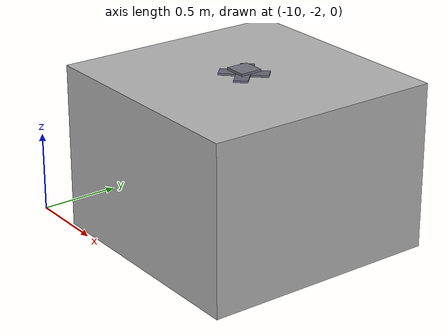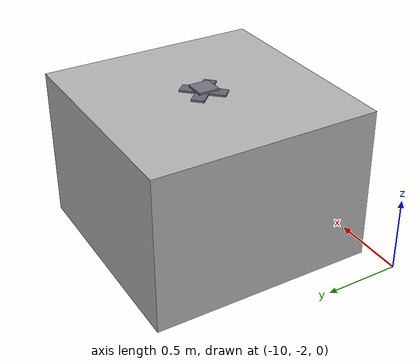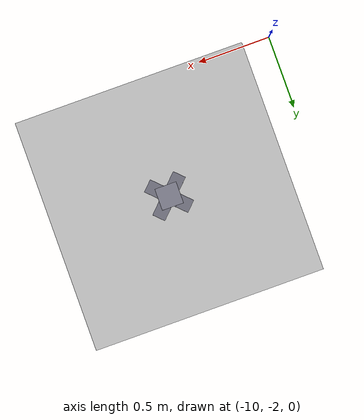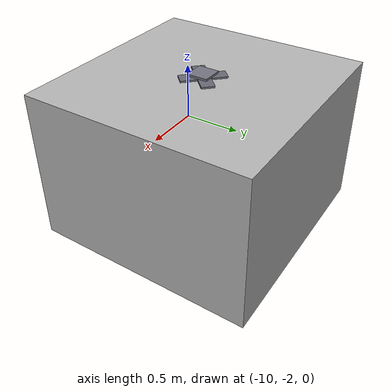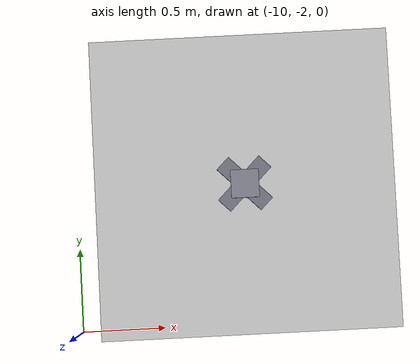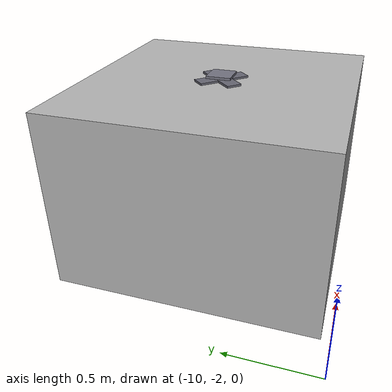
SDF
<sdf version="1.11">
 <world name="worldCobotta">
  <scene><grid>false</grid></scene>
  <gravity>0 0 -9.81</gravity>
  <physics name="1ms" type="ode">
   <max_step_size>0.001</max_step_size>
   <real_time_factor>1.0</real_time_factor>
   <real_time_update_rate>1000</real_time_update_rate>
   <max_contacts>12</max_contacts>
   <ode>
    <solver>
     <type>world</type>
     <iters>100</iters>
     <sor>1.3</sor>
     <use_dynamic_moi_rescaling>true</use_dynamic_moi_rescaling>
    </solver>
    <constraints>
     <cfm>1e-10</cfm>
     <erp>0.2</erp>
     <contact_max_correcting_vel>10.0</contact_max_correcting_vel>
     <contact_surface_layer>0.0001</contact_surface_layer>
    </constraints>
   </ode>
  </physics>
  <plugin filename="gz-sim-physics-system" name="gz::sim::systems::Physics">
   <engine><filename>gz-physics-dartsim-plugin</filename></engine>
  </plugin>
  <plugin filename="gz-sim-sensors-system" name="gz::sim::systems::Sensors">
   <render_engine>ogre2</render_engine>
  </plugin>
  <plugin filename="gz-sim-user-commands-system" name="gz::sim::systems::UserCommands"/>
  <plugin filename="gz-sim-scene-broadcaster-system" name="gz::sim::systems::SceneBroadcaster"/>
  <light type="directional" name="sun">
   <cast_shadows>false</cast_shadows>
   <pose>0 0 10 0 0 0</pose>
   <diffuse>0.8 0.8 0.8 1</diffuse>
   <specular>0.1 0.1 0.1 1</specular>
   <direction>-0.5 0.5 -1</direction>
  </light>
  <model name="SimpleTable">
   <static>true</static>
   <pose>-9.0 -1.2 0.4934 0 0 0</pose>
   <link name="link">
    <collision name="collision"><geometry><box><size>1.5 1.5 1.04</size></box></geometry></collision>
    <visual name="visual">
     <geometry><box><size>1.5 1.5 1.04</size></box></geometry>
     <material>
      <ambient>0.6 0.6 0.6 1</ambient>
      <diffuse>0.7 0.7 0.7 1</diffuse>
      <specular>0.0 0.0 0.0 1</specular>
     </material>
    </visual>
   </link>
  </model>
  <model name="RobotBasePlate">
   <static>true</static>
   <pose>-9.0 -1.2 0 0 0 0</pose>
   <link name="plate">
    <visual name="lower_star_a">
     <pose>0 0 1.020 0 0 0.7854</pose>
     <geometry><box><size>0.30 0.085 0.012</size></box></geometry>
     <material>
      <ambient>0.25 0.25 0.28 1</ambient>
      <diffuse>0.4 0.4 0.45 1</diffuse>
      <specular>0.6 0.6 0.6 1</specular>
     </material>
    </visual>
    <visual name="lower_star_b">
     <pose>0 0 1.020 0 0 -0.7854</pose>
     <geometry><box><size>0.30 0.085 0.012</size></box></geometry>
     <material>
      <ambient>0.25 0.25 0.28 1</ambient>
      <diffuse>0.4 0.4 0.45 1</diffuse>
      <specular>0.6 0.6 0.6 1</specular>
     </material>
    </visual>
    <visual name="upper_plate">
     <pose>0 0 1.042 0 0 0</pose>
     <geometry><box><size>0.14 0.14 0.014</size></box></geometry>
     <material>
      <ambient>0.3 0.3 0.33 1</ambient>
      <diffuse>0.45 0.45 0.5 1</diffuse>
      <specular>0.7 0.7 0.7 1</specular>
     </material>
    </visual>
    <collision name="collision">
     <pose>0 0 1.026 0 0 0</pose>
     <geometry><box><size>0.16 0.16 0.036</size></box></geometry>
    </collision>
   </link>
  </model>
  <model name="overhead_camera">
   <static>true</static>
   <pose>-9.0 -2.6 1.5 0 0.15 1.5708</pose>
   <link name="camera_link">
    <sensor name="overhead_cam" type="camera">
     <camera>
      <horizontal_fov>1.047</horizontal_fov>
      <image><width>640</width><height>480</height></image>
      <clip><near>0.1</near><far>100</far></clip>
     </camera>
     <always_on>true</always_on>
     <update_rate>5</update_rate>
     <topic>/gz/camera/image</topic>
     <visualize>false</visualize>
    </sensor>
   </link>
  </model>
 </world>
</sdf>
